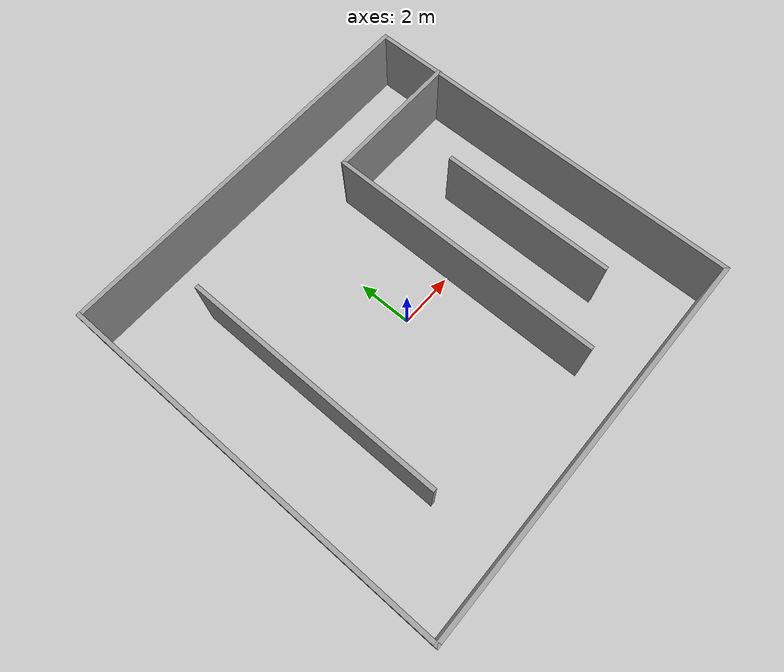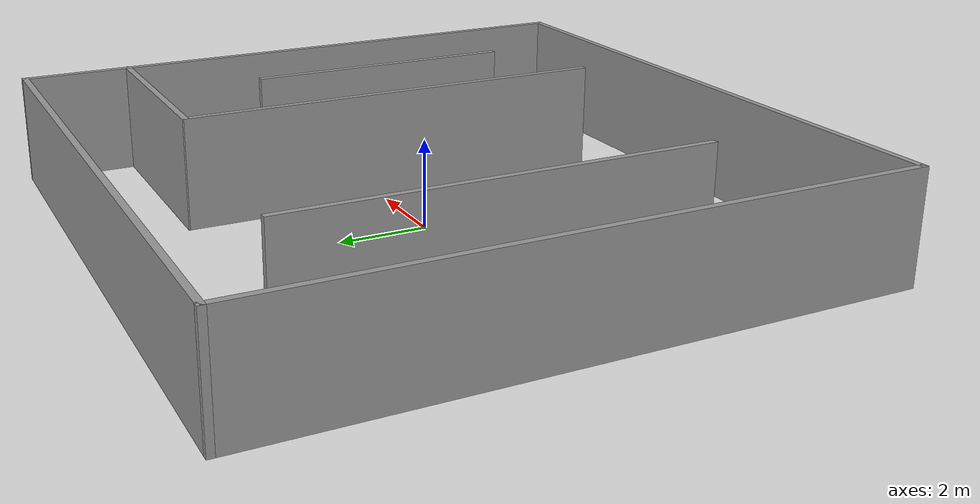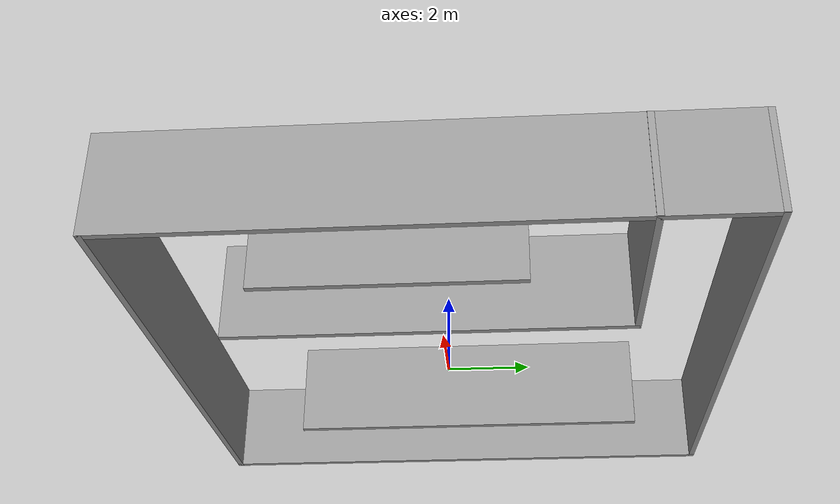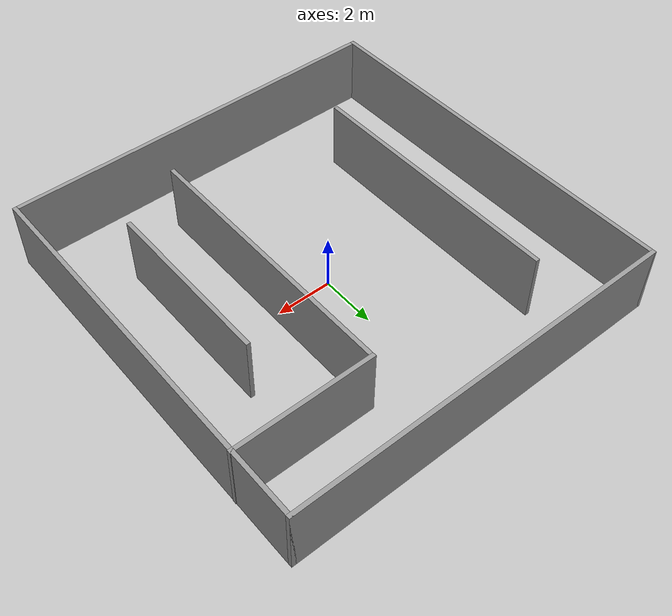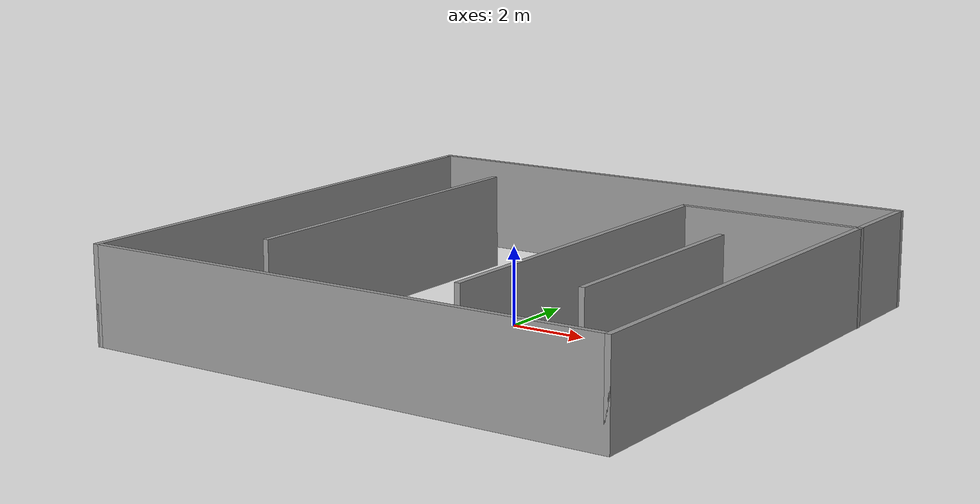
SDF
<?xml version='1.0'?>
<sdf version='1.6'>
  <model name='LTL_WORLD'>
    <pose frame=''>0.008 0 0 0 -0 0</pose>
    <link name='Wall_0'>
      <collision name='Wall_0_Collision'>
        <geometry>
          <box>
            <size>14.15 0.15 2.5</size>
          </box>
        </geometry>
        <pose frame=''>0 0 1.25 0 -0 0</pose>
      </collision>
      <visual name='Wall_0_Visual'>
        <pose frame=''>0 0 1.25 0 -0 0</pose>
        <geometry>
          <box>
            <size>14.15 0.15 2.5</size>
          </box>
        </geometry>
        <material>
          <script>
            <uri>file://media/materials/scripts/gazebo.material</uri>
            <name>Gazebo/Grey</name>
          </script>
          <ambient>1 1 1 1</ambient>
        </material>
      </visual>
      <pose frame=''>-0.008 7 0 0 -0 0</pose>
    </link>
    <link name='Wall_10'>
      <collision name='Wall_10_Collision'>
        <geometry>
          <box>
            <size>6.25 0.15 2.5</size>
          </box>
        </geometry>
        <pose frame=''>0 0 1.25 0 -0 0</pose>
      </collision>
      <visual name='Wall_10_Visual'>
        <pose frame=''>0 0 1.25 0 -0 0</pose>
        <geometry>
          <box>
            <size>6.25 0.15 2.5</size>
          </box>
        </geometry>
        <material>
          <script>
            <uri>file://media/materials/scripts/gazebo.material</uri>
            <name>Gazebo/Grey</name>
          </script>
          <ambient>1 1 1 1</ambient>
        </material>
      </visual>
      <pose frame=''>4.57658 -1.07207 0 0 0 -1.5708</pose>
    </link>
    <link name='Wall_12'>
      <collision name='Wall_12_Collision'>
        <geometry>
          <box>
            <size>5 0.15 2.5</size>
          </box>
        </geometry>
        <pose frame=''>0 0 1.25 0 -0 0</pose>
      </collision>
      <visual name='Wall_12_Visual'>
        <pose frame=''>0 0 1.25 0 -0 0</pose>
        <geometry>
          <box>
            <size>5 0.15 2.5</size>
          </box>
        </geometry>
        <material>
          <script>
            <uri>file://media/materials/scripts/gazebo.material</uri>
            <name>Gazebo/Grey</name>
          </script>
          <ambient>1 1 1 1</ambient>
        </material>
      </visual>
      <pose frame=''>4.583 4.56783 0 0 -0 3.14159</pose>
    </link>
    <link name='Wall_13'>
      <collision name='Wall_13_Collision'>
        <geometry>
          <box>
            <size>9.98562 0.15 2.5</size>
          </box>
        </geometry>
        <pose frame=''>0 0 1.25 0 -0 0</pose>
      </collision>
      <visual name='Wall_13_Visual'>
        <pose frame=''>0 0 1.25 0 -0 0</pose>
        <geometry>
          <box>
            <size>9.98562 0.15 2.5</size>
          </box>
        </geometry>
        <material>
          <script>
            <uri>file://media/materials/scripts/gazebo.material</uri>
            <name>Gazebo/Grey</name>
          </script>
          <ambient>1 1 1 1</ambient>
        </material>
      </visual>
      <pose frame=''>2.15792 -0.380567 0 0 0 -1.57081</pose>
    </link>
    <link name='Wall_2'>
      <collision name='Wall_2_Collision'>
        <geometry>
          <box>
            <size>14.15 0.15 2.5</size>
          </box>
        </geometry>
        <pose frame=''>0 0 1.25 0 -0 0</pose>
      </collision>
      <visual name='Wall_2_Visual'>
        <pose frame=''>0 0 1.25 0 -0 0</pose>
        <geometry>
          <box>
            <size>14.15 0.15 2.5</size>
          </box>
        </geometry>
        <material>
          <script>
            <uri>file://media/materials/scripts/gazebo.material</uri>
            <name>Gazebo/Grey</name>
          </script>
          <ambient>1 1 1 1</ambient>
        </material>
      </visual>
      <pose frame=''>-0.008 -7 0 0 -0 0</pose>
    </link>
    <link name='Wall_4'>
      <collision name='Wall_4_Collision'>
        <geometry>
          <box>
            <size>14.15 0.15 2.5</size>
          </box>
        </geometry>
        <pose frame=''>0 0 1.25 0 -0 0</pose>
      </collision>
      <visual name='Wall_4_Visual'>
        <pose frame=''>0 0 1.25 0 -0 0</pose>
        <geometry>
          <box>
            <size>14.15 0.15 2.5</size>
          </box>
        </geometry>
        <material>
          <script>
            <uri>file://media/materials/scripts/gazebo.material</uri>
            <name>Gazebo/Grey</name>
          </script>
          <ambient>1 1 1 1</ambient>
        </material>
      </visual>
      <pose frame=''>-7.008 0 0 0 0 -1.5708</pose>
    </link>
    <link name='Wall_6'>
      <collision name='Wall_6_Collision'>
        <geometry>
          <box>
            <size>14.15 0.15 2.5</size>
          </box>
        </geometry>
        <pose frame=''>0 0 1.25 0 -0 0</pose>
      </collision>
      <visual name='Wall_6_Visual'>
        <pose frame=''>0 0 1.25 0 -0 0</pose>
        <geometry>
          <box>
            <size>14.15 0.15 2.5</size>
          </box>
        </geometry>
        <material>
          <script>
            <uri>file://media/materials/scripts/gazebo.material</uri>
            <name>Gazebo/Grey</name>
          </script>
          <ambient>1 1 1 1</ambient>
        </material>
      </visual>
      <pose frame=''>6.992 0 0 0 -0 1.5708</pose>
    </link>
    <link name='Wall_8'>
      <collision name='Wall_8_Collision'>
        <geometry>
          <box>
            <size>9.5 0.15 2.5</size>
          </box>
        </geometry>
        <pose frame=''>0 0 1.25 0 -0 0</pose>
      </collision>
      <visual name='Wall_8_Visual'>
        <pose frame=''>0 0 1.25 0 -0 0</pose>
        <geometry>
          <box>
            <size>9.5 0.15 2.5</size>
          </box>
        </geometry>
        <material>
          <script>
            <uri>file://media/materials/scripts/gazebo.material</uri>
            <name>Gazebo/Grey</name>
          </script>
          <ambient>1 1 1 1</ambient>
        </material>
      </visual>
      <pose frame=''>-4.05518 0.27683 0 0 0 -1.5708</pose>
    </link>
    <static>1</static>
  </model>
</sdf>
